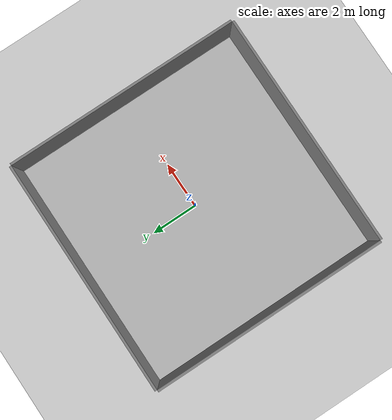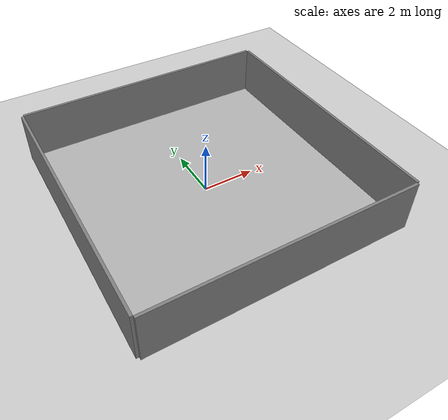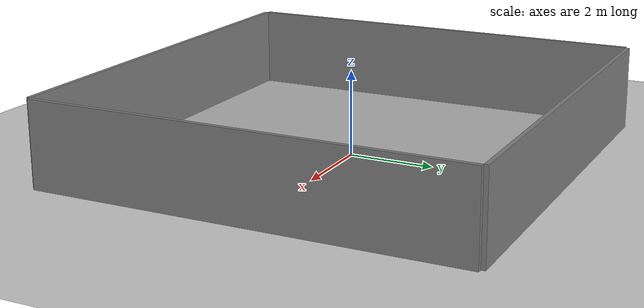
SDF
<?xml version="1.0" ?>
<sdf version="1.6">
  <world name="simple_room">
    <!-- Physics parameters -->
    <physics name="1ms" type="ode">
      <gravity>0 0 -9.8</gravity>
      <max_step_size>0.001</max_step_size>
      <real_time_factor>1.0</real_time_factor>
      <real_time_update_rate>1000.0</real_time_update_rate>
      <ode>
        <solver>
          <type>quick</type>
          <iters>10</iters>
          <sor>1.3</sor>
        </solver>
        <constraints>
          <cfm>0.0</cfm>
          <erp>0.2</erp>
          <contact_max_correcting_vel>100.0</contact_max_correcting_vel>
          <contact_surface_layer>0.001</contact_surface_layer>
        </constraints>
      </ode>
    </physics>

    <!-- Ground plane -->
    <include>
      <uri>model://ground_plane</uri>
    </include>

    <!-- Lighting -->
    <include>
      <uri>model://sun</uri>
    </include>

    <!-- Simple room with walls -->
    <!-- Floor -->
    <model name="floor">
      <pose>0 0 0 0 0 0</pose>
      <link name="floor_link">
        <collision name="floor_collision">
          <geometry>
            <box>
              <size>10 10 0.1</size>
            </box>
          </geometry>
        </collision>
        <visual name="floor_visual">
          <geometry>
            <box>
              <size>10 10 0.1</size>
            </box>
          </geometry>
          <material>
            <ambient>0.7 0.7 0.7 1</ambient>
            <diffuse>0.7 0.7 0.7 1</diffuse>
            <specular>0.3 0.3 0.3 1</specular>
          </material>
        </visual>
        <inertial>
          <mass>1e32</mass>
          <inertia>
            <ixx>1e32</ixx>
            <ixy>0</ixy>
            <ixz>0</ixz>
            <iyy>1e32</iyy>
            <iyz>0</iyz>
            <izz>1e32</izz>
          </inertia>
        </inertial>
      </link>
      <static>true</static>
    </model>

    <!-- Walls -->
    <model name="wall_north">
      <pose>0 5.05 1 0 0 0</pose>
      <link name="wall_north_link">
        <collision name="wall_north_collision">
          <geometry>
            <box>
              <size>10 0.1 2</size>
            </box>
          </geometry>
        </collision>
        <visual name="wall_north_visual">
          <geometry>
            <box>
              <size>10 0.1 2</size>
            </box>
          </geometry>
          <material>
            <ambient>0.5 0.5 0.5 1</ambient>
            <diffuse>0.5 0.5 0.5 1</diffuse>
            <specular>0.1 0.1 0.1 1</specular>
          </material>
        </visual>
        <inertial>
          <mass>1e32</mass>
          <inertia>
            <ixx>1e32</ixx>
            <ixy>0</ixy>
            <ixz>0</ixz>
            <iyy>1e32</iyy>
            <iyz>0</iyz>
            <izz>1e32</izz>
          </inertia>
        </inertial>
      </link>
      <static>true</static>
    </model>

    <model name="wall_south">
      <pose>0 -5.05 1 0 0 0</pose>
      <link name="wall_south_link">
        <collision name="wall_south_collision">
          <geometry>
            <box>
              <size>10 0.1 2</size>
            </box>
          </geometry>
        </collision>
        <visual name="wall_south_visual">
          <geometry>
            <box>
              <size>10 0.1 2</size>
            </box>
          </geometry>
          <material>
            <ambient>0.5 0.5 0.5 1</ambient>
            <diffuse>0.5 0.5 0.5 1</diffuse>
            <specular>0.1 0.1 0.1 1</specular>
          </material>
        </visual>
        <inertial>
          <mass>1e32</mass>
          <inertia>
            <ixx>1e32</ixx>
            <ixy>0</ixy>
            <ixz>0</ixz>
            <iyy>1e32</iyy>
            <iyz>0</iyz>
            <izz>1e32</izz>
          </inertia>
        </inertial>
      </link>
      <static>true</static>
    </model>

    <model name="wall_east">
      <pose>5.05 0 1 0 0 0</pose>
      <link name="wall_east_link">
        <collision name="wall_east_collision">
          <geometry>
            <box>
              <size>0.1 10 2</size>
            </box>
          </geometry>
        </collision>
        <visual name="wall_east_visual">
          <geometry>
            <box>
              <size>0.1 10 2</size>
            </box>
          </geometry>
          <material>
            <ambient>0.5 0.5 0.5 1</ambient>
            <diffuse>0.5 0.5 0.5 1</diffuse>
            <specular>0.1 0.1 0.1 1</specular>
          </material>
        </visual>
        <inertial>
          <mass>1e32</mass>
          <inertia>
            <ixx>1e32</ixx>
            <ixy>0</ixy>
            <ixz>0</ixz>
            <iyy>1e32</iyy>
            <iyz>0</iyz>
            <izz>1e32</izz>
          </inertia>
        </inertial>
      </link>
      <static>true</static>
    </model>

    <model name="wall_west">
      <pose>-5.05 0 1 0 0 0</pose>
      <link name="wall_west_link">
        <collision name="wall_west_collision">
          <geometry>
            <box>
              <size>0.1 10 2</size>
            </box>
          </geometry>
        </collision>
        <visual name="wall_west_visual">
          <geometry>
            <box>
              <size>0.1 10 2</size>
            </box>
          </geometry>
          <material>
            <ambient>0.5 0.5 0.5 1</ambient>
            <diffuse>0.5 0.5 0.5 1</diffuse>
            <specular>0.1 0.1 0.1 1</specular>
          </material>
        </visual>
        <inertial>
          <mass>1e32</mass>
          <inertia>
            <ixx>1e32</ixx>
            <ixy>0</ixy>
            <ixz>0</ixz>
            <iyy>1e32</iyy>
            <iyz>0</iyz>
            <izz>1e32</izz>
          </inertia>
        </inertial>
      </link>
      <static>true</static>
    </model>
  </world>
</sdf>
